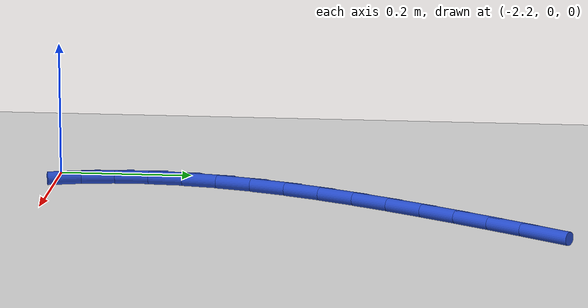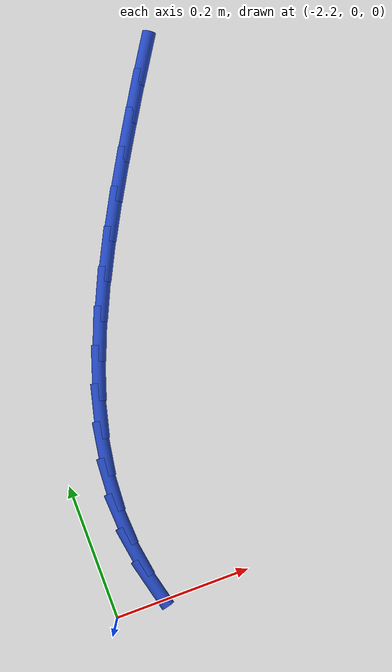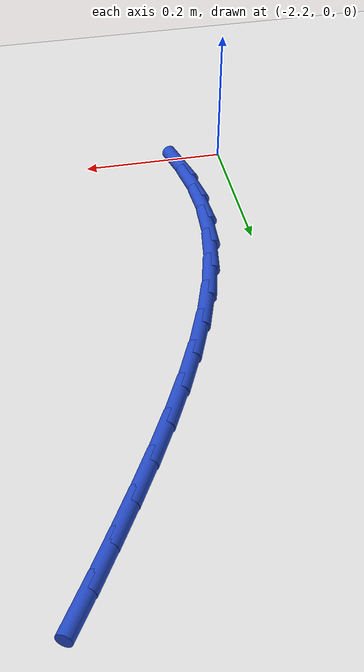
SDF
<sdf version="1.6">
 <world name="default">
  <model name="ground_plane">
   <static>1</static>
   <link name="link">
    <collision name="collision">
     <geometry><plane><normal>0 0 1</normal><size>100 100</size></plane></geometry>
     <surface><friction><ode><mu>100</mu><mu2>50</mu2></ode></friction></surface>
    </collision>
    <visual name="visual">
     <cast_shadows>0</cast_shadows>
     <geometry><plane><normal>0 0 1</normal><size>100 100</size></plane></geometry>
     <material>
      <script><uri>file://media/materials/scripts/gazebo.material</uri><name>Gazebo/WhiteGlow</name></script>
     </material>
    </visual>
   </link>
  </model>
  <model name="line">
   <link name="link_45">
    <pose>-1.8824751121797134 0.7461786291616542 0.01 0 1.57 1.0044474173421747</pose>
    <collision name="collision">
     <geometry><cylinder><radius>0.01</radius><length>0.08</length></cylinder></geometry>
    </collision>
    <visual name="visual">
     <material>
      <script><name>Gazebo/Blue</name><uri>file://media/materials/scripts/gazebo.material</uri></script>
     </material>
     <geometry><cylinder><radius>0.01</radius><length>0.08</length></cylinder></geometry>
    </visual>
   </link>
   <link name="link_46">
    <pose>-1.9130295465901481 0.698124179210066 0.01 0 1.57 1.0210443774201572</pose>
    <collision name="collision">
     <geometry><cylinder><radius>0.01</radius><length>0.08</length></cylinder></geometry>
    </collision>
    <visual name="visual">
     <material>
      <script><name>Gazebo/Blue</name><uri>file://media/materials/scripts/gazebo.material</uri></script>
     </material>
     <geometry><cylinder><radius>0.01</radius><length>0.08</length></cylinder></geometry>
    </visual>
   </link>
   <link name="link_47">
    <pose>-1.9432751563412387 0.6487648645427585 0.01 0 1.57 1.0308046886369056</pose>
    <collision name="collision">
     <geometry><cylinder><radius>0.01</radius><length>0.08</length></cylinder></geometry>
    </collision>
    <visual name="visual">
     <material>
      <script><name>Gazebo/Blue</name><uri>file://media/materials/scripts/gazebo.material</uri></script>
     </material>
     <geometry><cylinder><radius>0.01</radius><length>0.08</length></cylinder></geometry>
    </visual>
   </link>
   <link name="link_48">
    <pose>-1.9734127989349677 0.5984867119338192 0.01 0 1.57 1.0468074591794336</pose>
    <collision name="collision">
     <geometry><cylinder><radius>0.01</radius><length>0.08</length></cylinder></geometry>
    </collision>
    <visual name="visual">
     <material>
      <script><name>Gazebo/Blue</name><uri>file://media/materials/scripts/gazebo.material</uri></script>
     </material>
     <geometry><cylinder><radius>0.01</radius><length>0.08</length></cylinder></geometry>
    </visual>
   </link>
   <link name="link_49">
    <pose>-2.0029000952785765 0.5474591964600364 0.01 0 1.57 1.0700159267585363</pose>
    <collision name="collision">
     <geometry><cylinder><radius>0.01</radius><length>0.08</length></cylinder></geometry>
    </collision>
    <visual name="visual">
     <material>
      <script><name>Gazebo/Blue</name><uri>file://media/materials/scripts/gazebo.material</uri></script>
     </material>
     <geometry><cylinder><radius>0.01</radius><length>0.08</length></cylinder></geometry>
    </visual>
   </link>
   <link name="link_50">
    <pose>-2.0311524041166025 0.4958394795646513 0.01 0 1.57 1.1009392858986582</pose>
    <collision name="collision">
     <geometry><cylinder><radius>0.01</radius><length>0.08</length></cylinder></geometry>
    </collision>
    <visual name="visual">
     <material>
      <script><name>Gazebo/Blue</name><uri>file://media/materials/scripts/gazebo.material</uri></script>
     </material>
     <geometry><cylinder><radius>0.01</radius><length>0.08</length></cylinder></geometry>
    </visual>
   </link>
   <link name="link_51">
    <pose>-2.0575850841935823 0.4437847226909073 0.01 0 1.57 1.1403612497952351</pose>
    <collision name="collision">
     <geometry><cylinder><radius>0.01</radius><length>0.08</length></cylinder></geometry>
    </collision>
    <visual name="visual">
     <material>
      <script><name>Gazebo/Blue</name><uri>file://media/materials/scripts/gazebo.material</uri></script>
     </material>
     <geometry><cylinder><radius>0.01</radius><length>0.08</length></cylinder></geometry>
    </visual>
   </link>
   <link name="link_52">
    <pose>-2.0816134942540554 0.3914520872820462 0.01 0 1.57 1.1893344941096373</pose>
    <collision name="collision">
     <geometry><cylinder><radius>0.01</radius><length>0.08</length></cylinder></geometry>
    </collision>
    <visual name="visual">
     <material>
      <script><name>Gazebo/Blue</name><uri>file://media/materials/scripts/gazebo.material</uri></script>
     </material>
     <geometry><cylinder><radius>0.01</radius><length>0.08</length></cylinder></geometry>
    </visual>
   </link>
   <link name="link_53">
    <pose>-2.102652993042558 0.33899873478131115 0.01 0 1.57 1.2491549169120866</pose>
    <collision name="collision">
     <geometry><cylinder><radius>0.01</radius><length>0.08</length></cylinder></geometry>
    </collision>
    <visual name="visual">
     <material>
      <script><name>Gazebo/Blue</name><uri>file://media/materials/scripts/gazebo.material</uri></script>
     </material>
     <geometry><cylinder><radius>0.01</radius><length>0.08</length></cylinder></geometry>
    </visual>
   </link>
   <link name="link_54">
    <pose>-2.1201189393036275 0.2865818266319438 0.01 0 1.57 1.3212825768672325</pose>
    <collision name="collision">
     <geometry><cylinder><radius>0.01</radius><length>0.08</length></cylinder></geometry>
    </collision>
    <visual name="visual">
     <material>
      <script><name>Gazebo/Blue</name><uri>file://media/materials/scripts/gazebo.material</uri></script>
     </material>
     <geometry><cylinder><radius>0.01</radius><length>0.08</length></cylinder></geometry>
    </visual>
   </link>
   <link name="link_55">
    <pose>-2.133426691781803 0.23435852427718754 0.01 0 1.57 1.4071580618791342</pose>
    <collision name="collision">
     <geometry><cylinder><radius>0.01</radius><length>0.08</length></cylinder></geometry>
    </collision>
    <visual name="visual">
     <material>
      <script><name>Gazebo/Blue</name><uri>file://media/materials/scripts/gazebo.material</uri></script>
     </material>
     <geometry><cylinder><radius>0.01</radius><length>0.08</length></cylinder></geometry>
    </visual>
   </link>
   <link name="link_56">
    <pose>-2.14199160922162 0.18248598916028386 0.01 0 1.57 1.5078509538920981</pose>
    <collision name="collision">
     <geometry><cylinder><radius>0.01</radius><length>0.08</length></cylinder></geometry>
    </collision>
    <visual name="visual">
     <material>
      <script><name>Gazebo/Blue</name><uri>file://media/materials/scripts/gazebo.material</uri></script>
     </material>
     <geometry><cylinder><radius>0.01</radius><length>0.08</length></cylinder></geometry>
    </visual>
   </link>
   <link name="link_57">
    <pose>-2.1452290503676172 0.1311213827244761 0.01 0 1.57 -1.5214106968566743</pose>
    <collision name="collision">
     <geometry><cylinder><radius>0.01</radius><length>0.08</length></cylinder></geometry>
    </collision>
    <visual name="visual">
     <material>
      <script><name>Gazebo/Blue</name><uri>file://media/materials/scripts/gazebo.material</uri></script>
     </material>
     <geometry><cylinder><radius>0.01</radius><length>0.08</length></cylinder></geometry>
    </visual>
   </link>
   <link name="link_58">
    <pose>-2.142720803433946 0.08037367635307055 0.01 0 1.57 -1.4162933456262834</pose>
    <collision name="collision">
     <geometry><cylinder><radius>0.01</radius><length>0.08</length></cylinder></geometry>
    </collision>
    <visual name="visual">
     <material>
      <script><name>Gazebo/Blue</name><uri>file://media/materials/scripts/gazebo.material</uri></script>
     </material>
     <geometry><cylinder><radius>0.01</radius><length>0.08</length></cylinder></geometry>
    </visual>
   </link>
   <link name="link_59">
    <pose>-2.1348921531730114 0.030107604943926232 0.01 0 1.57 -1.326609202504347</pose>
    <collision name="collision">
     <geometry><cylinder><radius>0.01</radius><length>0.08</length></cylinder></geometry>
    </collision>
    <visual name="visual">
     <material>
      <script><name>Gazebo/Blue</name><uri>file://media/materials/scripts/gazebo.material</uri></script>
     </material>
     <geometry><cylinder><radius>0.01</radius><length>0.08</length></cylinder></geometry>
    </visual>
   </link>
  </model>
 </world>
</sdf>
